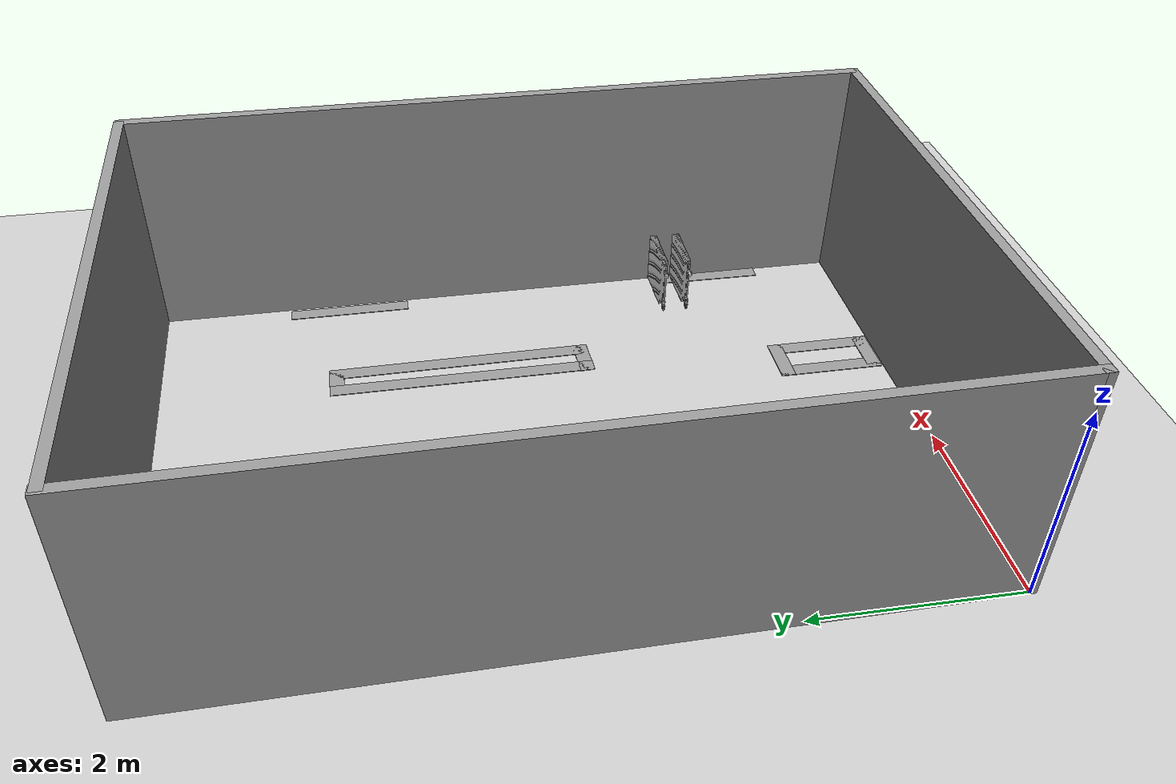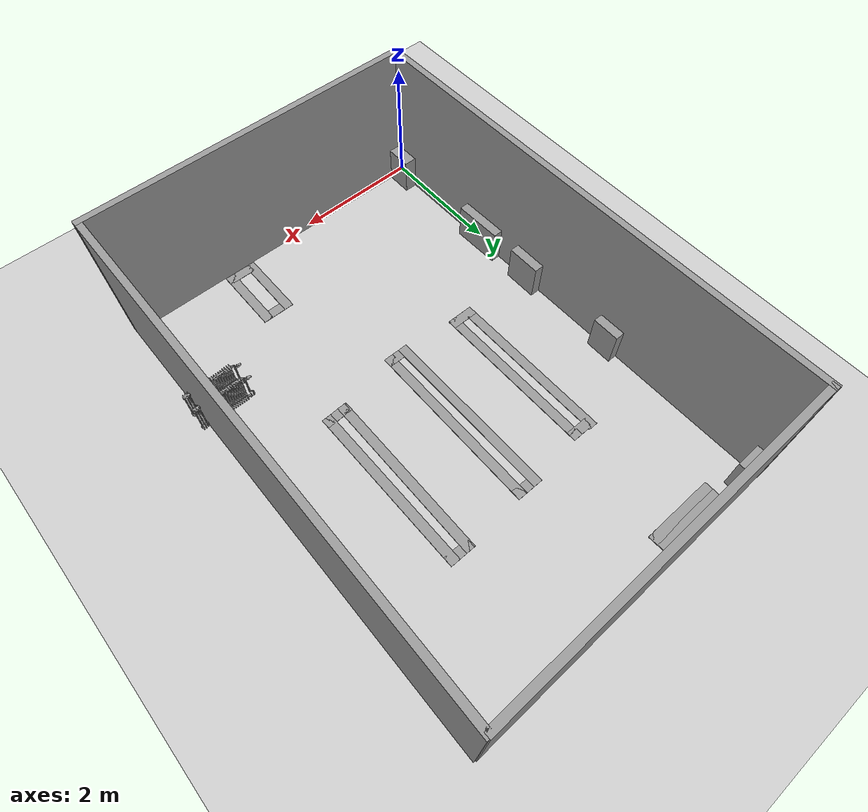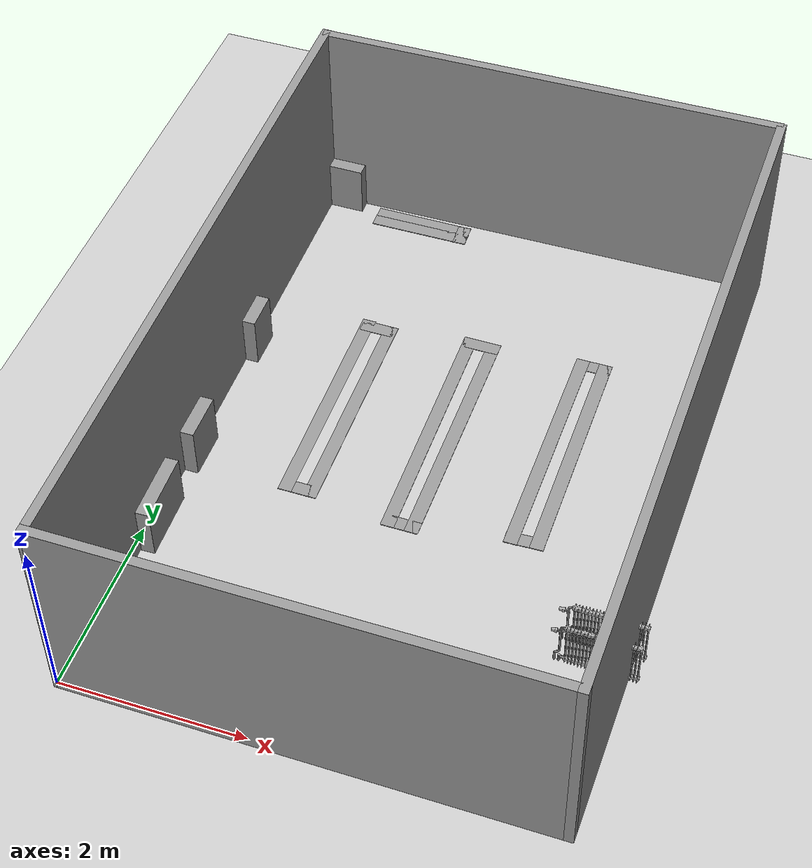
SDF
<sdf version="1.7">
 <world name="default">
  <model name="ground_plane">
   <static>1</static>
   <link name="link">
    <collision name="collision">
     <geometry><plane><normal>0 0 1</normal><size>100 100</size></plane></geometry>
     <surface>
      <contact><collide_bitmask>65535</collide_bitmask></contact>
      <friction><ode><mu>100</mu><mu2>50</mu2></ode></friction>
     </surface>
    </collision>
    <visual name="visual">
     <cast_shadows>0</cast_shadows>
     <geometry><plane><normal>0 0 1</normal><size>100 100</size></plane></geometry>
     <material>
      <script><uri>file://media/materials/scripts/gazebo.material</uri><name>Gazebo/Grey</name></script>
     </material>
    </visual>
   </link>
  </model>
  <model name="csl_lab_accurate">
   <pose>2.59176 3.78855 -0.102391 0 -0 0</pose>
   <link name="Wall_1">
    <collision name="Wall_1_Collision">
     <geometry><box><size>5.25533 0.1 2.5</size></box></geometry>
     <pose>0 0 1.25 0 -0 0</pose>
    </collision>
    <visual name="Wall_1_Visual">
     <pose>0 0 1.25 0 -0 0</pose>
     <geometry><box><size>5.25533 0.1 2.5</size></box></geometry>
     <material>
      <script><uri>file://media/materials/scripts/gazebo.material</uri><name>Gazebo/Grey</name></script>
      <ambient>1 1 1 1</ambient>
     </material>
     <meta><layer>0</layer></meta>
    </visual>
    <pose>-0.003381 3.76591 0 0 -0 0.010281</pose>
   </link>
   <link name="Wall_10">
    <collision name="Wall_10_Collision">
     <geometry><box><size>0.412933 0.15 0.1</size></box></geometry>
     <pose>0 0 0.05 0 -0 0</pose>
    </collision>
    <visual name="Wall_10_Visual">
     <pose>0 0 0.05 0 -0 0</pose>
     <geometry><box><size>0.412933 0.15 0.1</size></box></geometry>
     <material>
      <script><uri>file://media/materials/scripts/gazebo.material</uri><name>Gazebo/Grey</name></script>
      <ambient>1 1 1 1</ambient>
     </material>
     <meta><layer>0</layer></meta>
    </visual>
    <pose>-1.28488 1.73341 0 0 -0 3.14159</pose>
   </link>
   <link name="Wall_12">
    <collision name="Wall_12_Collision">
     <geometry><box><size>2.86102 0.15 0.1</size></box></geometry>
     <pose>0 0 0.05 0 -0 0</pose>
    </collision>
    <visual name="Wall_12_Visual">
     <pose>0 0 0.05 0 -0 0</pose>
     <geometry><box><size>2.86102 0.15 0.1</size></box></geometry>
     <material>
      <script><uri>file://media/materials/scripts/gazebo.material</uri><name>Gazebo/Grey</name></script>
      <ambient>1 1 1 1</ambient>
     </material>
     <meta><layer>0</layer></meta>
    </visual>
    <pose>-0.235881 0.50091 0 0 -0 -1.56416</pose>
   </link>
   <link name="Wall_13">
    <collision name="Wall_13_Collision">
     <geometry><box><size>0.412351 0.15 0.1</size></box></geometry>
     <pose>0 0 0.05 0 -0 0</pose>
    </collision>
    <visual name="Wall_13_Visual">
     <pose>0 0 0.05 0 -0 0</pose>
     <geometry><box><size>0.412351 0.15 0.1</size></box></geometry>
     <material>
      <script><uri>file://media/materials/scripts/gazebo.material</uri><name>Gazebo/Grey</name></script>
      <ambient>1 1 1 1</ambient>
     </material>
     <meta><layer>0</layer></meta>
    </visual>
    <pose>-0.095881 -0.85459 0 0 -0 0</pose>
   </link>
   <link name="Wall_14">
    <collision name="Wall_14_Collision">
     <geometry><box><size>2.86096 0.15 0.1</size></box></geometry>
     <pose>0 0 0.05 0 -0 0</pose>
    </collision>
    <visual name="Wall_14_Visual">
     <pose>0 0 0.05 0 -0 0</pose>
     <geometry><box><size>2.86096 0.15 0.1</size></box></geometry>
     <material>
      <script><uri>file://media/materials/scripts/gazebo.material</uri><name>Gazebo/Grey</name></script>
      <ambient>1 1 1 1</ambient>
     </material>
     <meta><layer>0</layer></meta>
    </visual>
    <pose>0.035119 0.50091 0 0 -0 1.5708</pose>
   </link>
   <link name="Wall_15">
    <collision name="Wall_15_Collision">
     <geometry><box><size>0.430387 0.15 0.1</size></box></geometry>
     <pose>0 0 0.05 0 -0 0</pose>
    </collision>
    <visual name="Wall_15_Visual">
     <pose>0 0 0.05 0 -0 0</pose>
     <geometry><box><size>0.430387 0.15 0.1</size></box></geometry>
     <material>
      <script><uri>file://media/materials/scripts/gazebo.material</uri><name>Gazebo/Grey</name></script>
      <ambient>1 1 1 1</ambient>
     </material>
     <meta><layer>0</layer></meta>
    </visual>
    <pose>-0.104881 1.85641 0 0 -0 3.14159</pose>
   </link>
   <link name="Wall_17">
    <collision name="Wall_17_Collision">
     <geometry><box><size>2.75 0.15 0.1</size></box></geometry>
     <pose>0 0 0.05 0 -0 0</pose>
    </collision>
    <visual name="Wall_17_Visual">
     <pose>0 0 0.05 0 -0 0</pose>
     <geometry><box><size>2.75 0.15 0.1</size></box></geometry>
     <material>
      <script><uri>file://media/materials/scripts/gazebo.material</uri><name>Gazebo/Grey</name></script>
      <ambient>1 1 1 1</ambient>
     </material>
     <meta><layer>0</layer></meta>
    </visual>
    <pose>1.05012 0.64341 0 0 -0 -1.5708</pose>
   </link>
   <link name="Wall_18">
    <collision name="Wall_18_Collision">
     <geometry><box><size>0.430076 0.15 0.1</size></box></geometry>
     <pose>0 0 0.05 0 -0 0</pose>
    </collision>
    <visual name="Wall_18_Visual">
     <pose>0 0 0.05 0 -0 0</pose>
     <geometry><box><size>0.430076 0.15 0.1</size></box></geometry>
     <material>
      <script><uri>file://media/materials/scripts/gazebo.material</uri><name>Gazebo/Grey</name></script>
      <ambient>1 1 1 1</ambient>
     </material>
     <meta><layer>0</layer></meta>
    </visual>
    <pose>1.18962 -0.65059 0 0 -0 0.042984</pose>
   </link>
   <link name="Wall_19">
    <collision name="Wall_19_Collision">
     <geometry><box><size>2.73859 0.15 0.1</size></box></geometry>
     <pose>0 0 0.05 0 -0 0</pose>
    </collision>
    <visual name="Wall_19_Visual">
     <pose>0 0 0.05 0 -0 0</pose>
     <geometry><box><size>2.73859 0.15 0.1</size></box></geometry>
     <material>
      <script><uri>file://media/materials/scripts/gazebo.material</uri><name>Gazebo/Grey</name></script>
      <ambient>1 1 1 1</ambient>
     </material>
     <meta><layer>0</layer></meta>
    </visual>
    <pose>1.32062 0.64941 0 0 -0 1.57736</pose>
   </link>
   <link name="Wall_20">
    <collision name="Wall_20_Collision">
     <geometry><box><size>0.395485 0.15 0.1</size></box></geometry>
     <pose>0 0 0.05 0 -0 0</pose>
    </collision>
    <visual name="Wall_20_Visual">
     <pose>0 0 0.05 0 -0 0</pose>
     <geometry><box><size>0.395485 0.15 0.1</size></box></geometry>
     <material>
      <script><uri>file://media/materials/scripts/gazebo.material</uri><name>Gazebo/Grey</name></script>
      <ambient>1 1 1 1</ambient>
     </material>
     <meta><layer>0</layer></meta>
    </visual>
    <pose>1.18962 1.94341 0 0 -0 3.14159</pose>
   </link>
   <link name="Wall_22">
    <collision name="Wall_22_Collision">
     <geometry><box><size>1.1563 0.15 0.1</size></box></geometry>
     <pose>0 0 0.05 0 -0 0</pose>
    </collision>
    <visual name="Wall_22_Visual">
     <pose>0 0 0.05 0 -0 0</pose>
     <geometry><box><size>1.1563 0.15 0.1</size></box></geometry>
     <material>
      <script><uri>file://media/materials/scripts/gazebo.material</uri><name>Gazebo/Grey</name></script>
      <ambient>1 1 1 1</ambient>
     </material>
     <meta><layer>0</layer></meta>
    </visual>
    <pose>-1.38938 3.45541 0 0 -0 0.005958</pose>
   </link>
   <link name="Wall_23">
    <collision name="Wall_23_Collision">
     <geometry><box><size>0.275786 0.15 0.1</size></box></geometry>
     <pose>0 0 0.05 0 -0 0</pose>
    </collision>
    <visual name="Wall_23_Visual">
     <pose>0 0 0.05 0 -0 0</pose>
     <geometry><box><size>0.275786 0.15 0.1</size></box></geometry>
     <material>
      <script><uri>file://media/materials/scripts/gazebo.material</uri><name>Gazebo/Grey</name></script>
      <ambient>1 1 1 1</ambient>
     </material>
     <meta><layer>0</layer></meta>
    </visual>
    <pose>-0.888881 3.52141 0 0 -0 1.61838</pose>
   </link>
   <link name="Wall_24">
    <collision name="Wall_24_Collision">
     <geometry><box><size>1.15057 0.15 0.1</size></box></geometry>
     <pose>0 0 0.05 0 -0 0</pose>
    </collision>
    <visual name="Wall_24_Visual">
     <pose>0 0 0.05 0 -0 0</pose>
     <geometry><box><size>1.15057 0.15 0.1</size></box></geometry>
     <material>
      <script><uri>file://media/materials/scripts/gazebo.material</uri><name>Gazebo/Grey</name></script>
      <ambient>1 1 1 1</ambient>
     </material>
     <meta><layer>0</layer></meta>
    </visual>
    <pose>-1.39238 3.58441 0 0 -0 3.14159</pose>
   </link>
   <link name="Wall_28">
    <collision name="Wall_28_Collision">
     <geometry><box><size>0.480435 0.15 0.7</size></box></geometry>
     <pose>0 0 0.35 0 -0 0</pose>
    </collision>
    <visual name="Wall_28_Visual">
     <pose>0 0 0.35 0 -0 0</pose>
     <geometry><box><size>0.480435 0.15 0.7</size></box></geometry>
     <material>
      <script><uri>file://media/materials/scripts/gazebo.material</uri><name>Gazebo/Grey</name></script>
      <ambient>1 1 1 1</ambient>
     </material>
     <meta><layer>0</layer></meta>
    </visual>
    <pose>-2.39988 3.61541 0 0 -0 0</pose>
   </link>
   <link name="Wall_3">
    <collision name="Wall_3_Collision">
     <geometry><box><size>7.67346 0.1 2.5</size></box></geometry>
     <pose>0 0 1.25 0 -0 0</pose>
    </collision>
    <visual name="Wall_3_Visual">
     <pose>0 0 1.25 0 -0 0</pose>
     <geometry><box><size>7.67346 0.1 2.5</size></box></geometry>
     <material>
      <script><uri>file://media/materials/scripts/gazebo.material</uri><name>Gazebo/Grey</name></script>
      <ambient>1 1 1 1</ambient>
     </material>
     <meta><layer>0</layer></meta>
    </visual>
    <pose>2.59762 -0.00609 0 0 -0 -1.57304</pose>
   </link>
   <link name="Wall_30">
    <collision name="Wall_30_Collision">
     <geometry><box><size>0.426 0.15 0.7</size></box></geometry>
     <pose>0 0 0.35 0 -0 0</pose>
    </collision>
    <visual name="Wall_30_Visual">
     <pose>0 0 0.35 0 -0 0</pose>
     <geometry><box><size>0.426 0.15 0.7</size></box></geometry>
     <material>
      <script><uri>file://media/materials/scripts/gazebo.material</uri><name>Gazebo/Grey</name></script>
      <ambient>1 1 1 1</ambient>
     </material>
     <meta><layer>0</layer></meta>
    </visual>
    <pose>-2.46488 1.02241 0 0 -0 -1.5708</pose>
   </link>
   <link name="Wall_34">
    <collision name="Wall_34_Collision">
     <geometry><box><size>0.533753 0.15 0.7</size></box></geometry>
     <pose>0 0 0.35 0 -0 0</pose>
    </collision>
    <visual name="Wall_34_Visual">
     <pose>0 0 0.35 0 -0 0</pose>
     <geometry><box><size>0.533753 0.15 0.7</size></box></geometry>
     <material>
      <script><uri>file://media/materials/scripts/gazebo.material</uri><name>Gazebo/Grey</name></script>
      <ambient>1 1 1 1</ambient>
     </material>
     <meta><layer>0</layer></meta>
    </visual>
    <pose>-2.44688 -0.63359 0 0 -0 -1.5708</pose>
   </link>
   <link name="Wall_36">
    <collision name="Wall_36_Collision">
     <geometry><box><size>0.771716 0.15 0.7</size></box></geometry>
     <pose>0 0 0.35 0 -0 0</pose>
    </collision>
    <visual name="Wall_36_Visual">
     <pose>0 0 0.35 0 -0 0</pose>
     <geometry><box><size>0.771716 0.15 0.7</size></box></geometry>
     <material>
      <script><uri>file://media/materials/scripts/gazebo.material</uri><name>Gazebo/Grey</name></script>
      <ambient>1 1 1 1</ambient>
     </material>
     <meta><layer>0</layer></meta>
    </visual>
    <pose>-2.44038 -1.65159 0 0 -0 -1.5499</pose>
   </link>
   <link name="Wall_4">
    <collision name="Wall_4_Collision">
     <geometry><box><size>5.24234 0.1 2.5</size></box></geometry>
     <pose>0 0 1.25 0 -0 0</pose>
    </collision>
    <visual name="Wall_4_Visual">
     <pose>0 0 1.25 0 -0 0</pose>
     <geometry><box><size>5.24234 0.1 2.5</size></box></geometry>
     <material>
      <script><uri>file://media/materials/scripts/gazebo.material</uri><name>Gazebo/Grey</name></script>
      <ambient>1 1 1 1</ambient>
     </material>
     <meta><layer>0</layer></meta>
    </visual>
    <pose>0.018119 -3.79259 0 0 -0 3.14159</pose>
   </link>
   <link name="Wall_43">
    <collision name="Wall_43_Collision">
     <geometry><box><size>0.499 0.2 0.7</size></box></geometry>
     <pose>0 0 0.35 0 -0 0</pose>
    </collision>
    <visual name="Wall_43_Visual">
     <pose>0 0 0.35 0 -0 0</pose>
     <geometry><box><size>0.499 0.2 0.7</size></box></geometry>
     <material>
      <script><uri>file://media/materials/scripts/gazebo.material</uri><name>Gazebo/Grey</name></script>
      <ambient>1 1 1 1</ambient>
     </material>
     <meta><layer>0</layer></meta>
    </visual>
    <pose>-2.40788 -3.58509 0 0 -0 1.5708</pose>
   </link>
   <link name="Wall_45">
    <collision name="Wall_45_Collision">
     <geometry><box><size>1.093 0.15 0.1</size></box></geometry>
     <pose>0 0 0.05 0 -0 0</pose>
    </collision>
    <visual name="Wall_45_Visual">
     <pose>0 0 0.05 0 -0 0</pose>
     <geometry><box><size>1.093 0.15 0.1</size></box></geometry>
     <material>
      <script><uri>file://media/materials/scripts/gazebo.material</uri><name>Gazebo/Grey</name></script>
      <ambient>1 1 1 1</ambient>
     </material>
     <meta><layer>0</layer></meta>
    </visual>
    <pose>0.628119 -3.18209 0 0 -0 1.5708</pose>
   </link>
   <link name="Wall_46">
    <collision name="Wall_46_Collision">
     <geometry><box><size>0.518 0.15 0.1</size></box></geometry>
     <pose>0 0 0.05 0 -0 0</pose>
    </collision>
    <visual name="Wall_46_Visual">
     <pose>0 0 0.05 0 -0 0</pose>
     <geometry><box><size>0.518 0.15 0.1</size></box></geometry>
     <material>
      <script><uri>file://media/materials/scripts/gazebo.material</uri><name>Gazebo/Grey</name></script>
      <ambient>1 1 1 1</ambient>
     </material>
     <meta><layer>0</layer></meta>
    </visual>
    <pose>0.812119 -2.71059 0 0 -0 0</pose>
   </link>
   <link name="Wall_47">
    <collision name="Wall_47_Collision">
     <geometry><box><size>1.093 0.15 0.1</size></box></geometry>
     <pose>0 0 0.05 0 -0 0</pose>
    </collision>
    <visual name="Wall_47_Visual">
     <pose>0 0 0.05 0 -0 0</pose>
     <geometry><box><size>1.093 0.15 0.1</size></box></geometry>
     <material>
      <script><uri>file://media/materials/scripts/gazebo.material</uri><name>Gazebo/Grey</name></script>
      <ambient>1 1 1 1</ambient>
     </material>
     <meta><layer>0</layer></meta>
    </visual>
    <pose>0.996119 -3.18209 0 0 -0 -1.5708</pose>
   </link>
   <link name="Wall_48">
    <collision name="Wall_48_Collision">
     <geometry><box><size>0.4835 0.15 0.1</size></box></geometry>
     <pose>0 0 0.05 0 -0 0</pose>
    </collision>
    <visual name="Wall_48_Visual">
     <pose>0 0 0.05 0 -0 0</pose>
     <geometry><box><size>0.4835 0.15 0.1</size></box></geometry>
     <material>
      <script><uri>file://media/materials/scripts/gazebo.material</uri><name>Gazebo/Grey</name></script>
      <ambient>1 1 1 1</ambient>
     </material>
     <meta><layer>0</layer></meta>
    </visual>
    <pose>0.829119 -3.65359 0 0 -0 3.14159</pose>
   </link>
   <link name="Wall_5">
    <collision name="Wall_5_Collision">
     <geometry><box><size>7.63796 0.1 2.5</size></box></geometry>
     <pose>0 0 1.25 0 -0 0</pose>
    </collision>
    <visual name="Wall_5_Visual">
     <pose>0 0 1.25 0 -0 0</pose>
     <geometry><box><size>7.63796 0.1 2.5</size></box></geometry>
     <material>
      <script><uri>file://media/materials/scripts/gazebo.material</uri><name>Gazebo/Grey</name></script>
      <ambient>1 1 1 1</ambient>
     </material>
     <meta><layer>0</layer></meta>
    </visual>
    <pose>-2.57938 -0.02359 0 0 -0 1.57783</pose>
   </link>
   <link name="Wall_51">
    <collision name="Wall_51_Collision">
     <geometry><box><size>1.28873 0.15 0.1</size></box></geometry>
     <pose>0 0 0.05 0 -0 0</pose>
    </collision>
    <visual name="Wall_51_Visual">
     <pose>0 0 0.05 0 -0 0</pose>
     <geometry><box><size>1.28873 0.15 0.1</size></box></geometry>
     <material>
      <script><uri>file://media/materials/scripts/gazebo.material</uri><name>Gazebo/Grey</name></script>
      <ambient>1 1 1 1</ambient>
     </material>
     <meta><layer>0</layer></meta>
    </visual>
    <pose>2.44412 1.76341 0 0 -0 -1.5708</pose>
   </link>
   <link name="Wall_53">
    <collision name="Wall_53_Collision">
     <geometry><box><size>1.23106 0.15 0.1</size></box></geometry>
     <pose>0 0 0.05 0 -0 0</pose>
    </collision>
    <visual name="Wall_53_Visual">
     <pose>0 0 0.05 0 -0 0</pose>
     <geometry><box><size>1.23106 0.15 0.1</size></box></geometry>
     <material>
      <script><uri>file://media/materials/scripts/gazebo.material</uri><name>Gazebo/Grey</name></script>
      <ambient>1 1 1 1</ambient>
     </material>
     <meta><layer>0</layer></meta>
    </visual>
    <pose>2.47262 -2.30209 0 0 -0 -1.58097</pose>
   </link>
   <link name="Wall_7">
    <collision name="Wall_7_Collision">
     <geometry><box><size>2.65114 0.15 0.1</size></box></geometry>
     <pose>0 0 0.05 0 -0 0</pose>
    </collision>
    <visual name="Wall_7_Visual">
     <pose>0 0 0.05 0 -0 0</pose>
     <geometry><box><size>2.65114 0.15 0.1</size></box></geometry>
     <material>
      <script><uri>file://media/materials/scripts/gazebo.material</uri><name>Gazebo/Grey</name></script>
      <ambient>1 1 1 1</ambient>
     </material>
     <meta><layer>0</layer></meta>
    </visual>
    <pose>-1.42488 0.50091 0 0 -0 -1.5636</pose>
   </link>
   <link name="Wall_8">
    <collision name="Wall_8_Collision">
     <geometry><box><size>0.429841 0.15 0.1</size></box></geometry>
     <pose>0 0 0.05 0 -0 0</pose>
    </collision>
    <visual name="Wall_8_Visual">
     <pose>0 0 0.05 0 -0 0</pose>
     <geometry><box><size>0.429841 0.15 0.1</size></box></geometry>
     <material>
      <script><uri>file://media/materials/scripts/gazebo.material</uri><name>Gazebo/Grey</name></script>
      <ambient>1 1 1 1</ambient>
     </material>
     <meta><layer>0</layer></meta>
    </visual>
    <pose>-1.27638 -0.74959 0 0 -0 0</pose>
   </link>
   <link name="Wall_9">
    <collision name="Wall_9_Collision">
     <geometry><box><size>2.63359 0.15 0.1</size></box></geometry>
     <pose>0 0 0.05 0 -0 0</pose>
    </collision>
    <visual name="Wall_9_Visual">
     <pose>0 0 0.05 0 -0 0</pose>
     <geometry><box><size>2.63359 0.15 0.1</size></box></geometry>
     <material>
      <script><uri>file://media/materials/scripts/gazebo.material</uri><name>Gazebo/Grey</name></script>
      <ambient>1 1 1 1</ambient>
     </material>
     <meta><layer>0</layer></meta>
    </visual>
    <pose>-1.14538 0.49191 0 0 -0 1.57764</pose>
   </link>
   <static>1</static>
  </model>
  <model name="CastIronRadiator_1_clone">
   <link name="link">
    <inertial>
     <inertia>
      <ixx>8.794</ixx>
      <ixy>-6.04e-06</ixy>
      <ixz>-0.00027907</ixz>
      <iyy>6.32668</iyy>
      <iyz>-3.26e-06</iyz>
      <izz>3.17141</izz>
     </inertia>
     <mass>145.789</mass>
    </inertial>
    <visual name="radiator_visual">
     <geometry>
      <mesh>
       <uri>https://fuel.ignitionrobotics.org/1.0/alexssom/models/cast iron radiator/1/files/meshes/radiator.dae</uri>
      </mesh>
     </geometry>
     <plugin name="ignition::gazebo::systems::Thermal" filename="ignition-gazebo-thermal-system">
      <temperature>325.0</temperature>
     </plugin>
     <material><shader type="pixel"/></material>
    </visual>
    <collision name="radiator_collision">
     <geometry>
      <mesh>
       <uri>/home/johnerzz/.ignition/fuel/fuel.ignitionrobotics.org/alexssom/models/cast iron radiator/1/meshes/collision.stl</uri>
       <scale>1 1 1</scale>
      </mesh>
     </geometry>
     <surface>
      <friction>
       <ode><mu>1</mu><mu2>1</mu2><fdir1>0 0 0</fdir1><slip1>0</slip1><slip2>0</slip2></ode>
       <torsional>
        <coefficient>1</coefficient>
        <patch_radius>0</patch_radius>
        <surface_radius>0</surface_radius>
        <use_patch_radius>1</use_patch_radius>
        <ode><slip>0</slip></ode>
       </torsional>
      </friction>
      <bounce><restitution_coefficient>0</restitution_coefficient><threshold>1e+06</threshold></bounce>
      <contact>
       <collide_without_contact>0</collide_without_contact>
       <collide_without_contact_bitmask>1</collide_without_contact_bitmask>
       <collide_bitmask>1</collide_bitmask>
       <ode>
        <soft_cfm>0</soft_cfm>
        <soft_erp>0.2</soft_erp>
        <kp>1e+13</kp>
        <kd>1</kd>
        <max_vel>0.01</max_vel>
        <min_depth>0</min_depth>
       </ode>
       <bullet>
        <split_impulse>1</split_impulse>
        <split_impulse_penetration_threshold>-0.01</split_impulse_penetration_threshold>
        <soft_cfm>0</soft_cfm>
        <soft_erp>0.2</soft_erp>
        <kp>1e+13</kp>
        <kd>1</kd>
       </bullet>
      </contact>
     </surface>
    </collision>
   </link>
   <static>1</static>
   <pose>4.96079 1.83492 0 0 -0 0</pose>
  </model>
  <model name="CastIronRadiator_1_clone_0">
   <link name="link">
    <inertial>
     <inertia>
      <ixx>8.794</ixx>
      <ixy>-6.04e-06</ixy>
      <ixz>-0.00027907</ixz>
      <iyy>6.32668</iyy>
      <iyz>-3.26e-06</iyz>
      <izz>3.17141</izz>
     </inertia>
     <mass>145.789</mass>
    </inertial>
    <visual name="radiator_visual">
     <geometry>
      <mesh>
       <uri>https://fuel.ignitionrobotics.org/1.0/alexssom/models/cast iron radiator/1/files/meshes/radiator.dae</uri>
      </mesh>
     </geometry>
     <plugin name="ignition::gazebo::systems::Thermal" filename="ignition-gazebo-thermal-system">
      <temperature>325.0</temperature>
     </plugin>
     <material><shader type="pixel"/></material>
    </visual>
    <collision name="radiator_collision">
     <geometry>
      <mesh>
       <uri>/home/johnerzz/.ignition/fuel/fuel.ignitionrobotics.org/alexssom/models/cast iron radiator/1/meshes/collision.stl</uri>
       <scale>1 1 1</scale>
      </mesh>
     </geometry>
     <surface>
      <friction>
       <ode><mu>1</mu><mu2>1</mu2><fdir1>0 0 0</fdir1><slip1>0</slip1><slip2>0</slip2></ode>
       <torsional>
        <coefficient>1</coefficient>
        <patch_radius>0</patch_radius>
        <surface_radius>0</surface_radius>
        <use_patch_radius>1</use_patch_radius>
        <ode><slip>0</slip></ode>
       </torsional>
      </friction>
      <bounce><restitution_coefficient>0</restitution_coefficient><threshold>1e+06</threshold></bounce>
      <contact>
       <collide_without_contact>0</collide_without_contact>
       <collide_without_contact_bitmask>1</collide_without_contact_bitmask>
       <collide_bitmask>1</collide_bitmask>
       <ode>
        <soft_cfm>0</soft_cfm>
        <soft_erp>0.2</soft_erp>
        <kp>1e+13</kp>
        <kd>1</kd>
        <max_vel>0.01</max_vel>
        <min_depth>0</min_depth>
       </ode>
       <bullet>
        <split_impulse>1</split_impulse>
        <split_impulse_penetration_threshold>-0.01</split_impulse_penetration_threshold>
        <soft_cfm>0</soft_cfm>
        <soft_erp>0.2</soft_erp>
        <kp>1e+13</kp>
        <kd>1</kd>
       </bullet>
      </contact>
     </surface>
    </collision>
   </link>
   <static>1</static>
   <pose>4.96345 2.09249 0 0 -0 0</pose>
  </model>
 </world>
</sdf>
